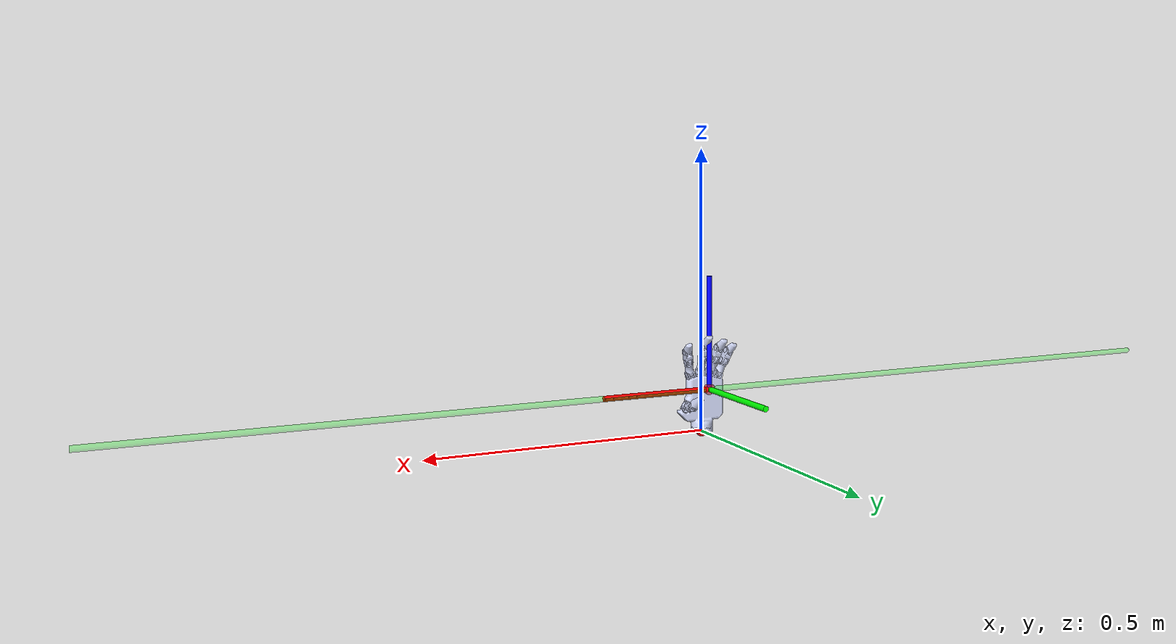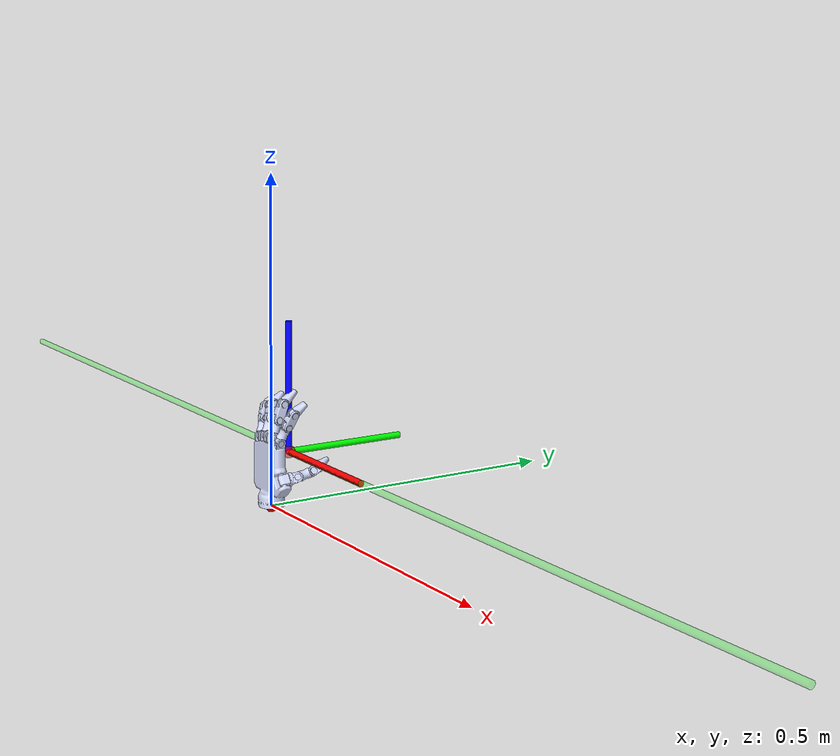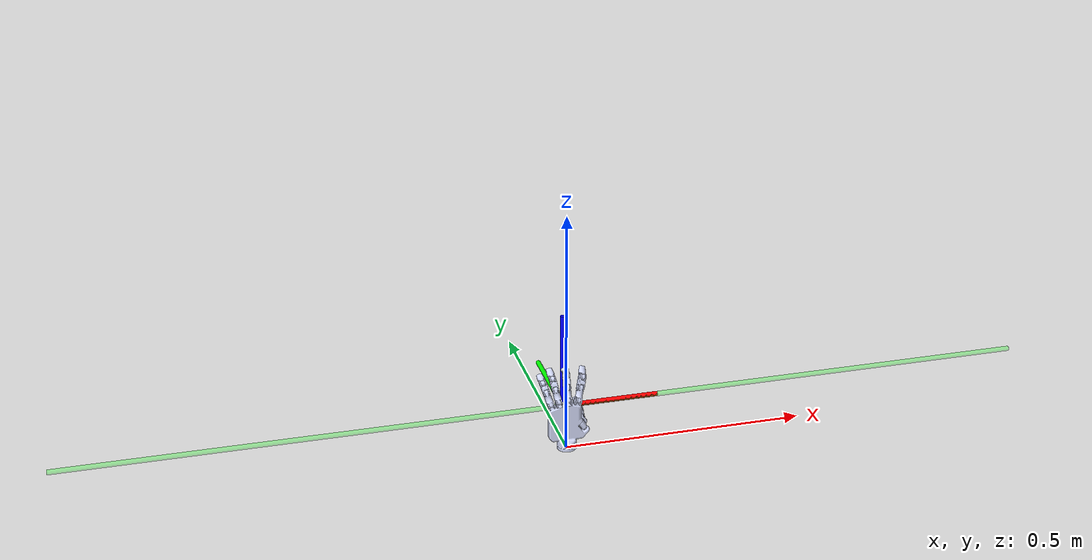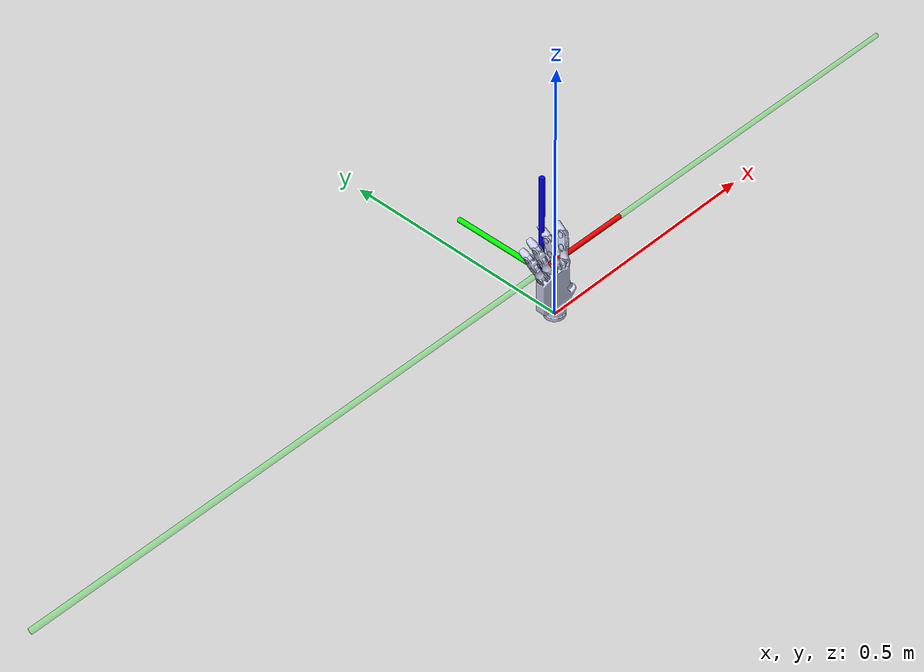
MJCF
<mujoco model="hand_left_sim">
    <compiler angle="radian"
              inertiafromgeom="true"
              texturedir="textures/"
              meshdir="/home/kavin/Documents/RosProjects/robot_ws/src/hand_left_sim/meshes/"/>

    <option impratio="20" cone="elliptic" density="1.2" viscosity="0.00002" timestep="0.002"/>

    <default>
        <geom density="5.0"/>
        <default class="joint">
            <joint axis="1 0 0" range="-3.14 3.14" damping="1" limited="true" armature="0.0002" frictionloss="0.01"/>
            <position kp="8" ctrlrange="-1.57 1.57"/>
        </default>
    </default>
    <size njmax="500" nconmax="100"/>
    <asset>
        <mesh name="palm_left" file="palm_left.STL"/>
        <mesh name="finger_11_left" file="finger_11_left.STL"/>
        <mesh name="finger_12_left" file="finger_12_left.STL"/>
        <mesh name="finger_13_left" file="finger_13_left.STL"/>
        <mesh name="finger_14_left" file="finger_14_left.STL"/>
        <mesh name="finger_21_left" file="finger_21_left.STL"/>
        <mesh name="finger_22_left" file="finger_22_left.STL"/>
        <mesh name="finger_23_left" file="finger_23_left.STL"/>
        <mesh name="finger_31_left" file="finger_31_left.STL"/>
        <mesh name="finger_32_left" file="finger_32_left.STL"/>
        <mesh name="finger_33_left" file="finger_33_left.STL"/>
        <mesh name="finger_41_left" file="finger_41_left.STL"/>
        <mesh name="finger_42_left" file="finger_42_left.STL"/>
        <mesh name="finger_43_left" file="finger_43_left.STL"/>
        <mesh name="finger_51_left" file="finger_51_left.STL"/>
        <mesh name="finger_52_left" file="finger_52_left.STL"/>
        <mesh name="finger_53_left" file="finger_53_left.STL"/>
    </asset>
    <worldbody>
        <body name="palm_left">
            <site name="ft_frame" pos="0 0 0" size="0.01 0.01 0.01" rgba="1 0 0 1" type="sphere" group="1"/>
            <body name="eef" pos="0 0.03 0.08">
                <site name="grip_site" pos="0 0 0" size="0.01 0.01 0.01" rgba="1 0 0 0.5" type="sphere" group="1"/>
                <site name="ee_x" pos="0.1 0 0" size="0.005 .1" quat="0.707105  0 0.707108 0 " rgba="1 0 0 1" type="cylinder" group="1"/>
                <site name="ee_y" pos="0 0.1 0" size="0.005 .1" quat="0.707105 0.707108 0 0" rgba="0 1 0 1" type="cylinder" group="1"/>
                <site name="ee_z" pos="0 0 0.1" size="0.005 .1" quat="1 0 0 0" rgba="0 0 1 1" type="cylinder" group="1"/>
                <site name="grip_site_cylinder" pos="0 0 0" size="0.005 1" quat="0.707105  0 0.707108 0 " rgba="0 1 0 0.3" type="cylinder" group="1"/>
            </body>

            <geom type="mesh" contype="0" conaffinity="0" group="1" rgba="0.792157 0.819608 0.933333 1" mesh="palm_left"/>
            <geom type="mesh" rgba="0.792157 0.819608 0.933333 1" mesh="palm_left"/>
            <body name="finger_11_left">
                <geom pos="0.033156 0 0.046854" quat="0.297559 -0.369215 -0.55247 -0.685504" type="mesh" contype="0" conaffinity="0" group="1" rgba="0.792157 0.819608 0.933333 1"
                      mesh="finger_11_left"/>
                <geom pos="0.033156 0 0.046854" quat="0.297559 -0.369215 -0.55247 -0.685504" type="mesh" rgba="0.792157 0.819608 0.933333 1" mesh="finger_11_left"/>
                <body name="finger_12_left">
                    <geom pos="0.0340431 0.00488584 0.0474386" quat="-0.225776 0.084373 -0.659108 -0.712378" type="mesh" contype="0" conaffinity="0" group="1" rgba="0.792157 0.819608 0.933333 1"
                          mesh="finger_12_left"/>
                    <geom pos="0.0340431 0.00488584 0.0474386" quat="-0.225776 0.084373 -0.659108 -0.712378" type="mesh" rgba="0.792157 0.819608 0.933333 1" mesh="finger_12_left"/>
                    <body name="finger_13_left" pos="0.0370088 0.0207994 0.0491807" quat="-0.219041 0.100573 -0.605544 -0.758435">
                        <inertial pos="-3.30478e-08 -2.57978e-07 0.0147548" quat="0.706872 4.59183e-06 -4.59488e-06 0.707342" mass="0.00477507" diaginertia="5.13037e-07 5.06539e-07 1.11818e-07"/>
                        <joint class="joint" name="j_13_left" axis="-1 0 0"/>
                        <geom type="mesh" contype="0" conaffinity="0" group="1" rgba="0.792157 0.819608 0.933333 1" mesh="finger_13_left"/>
                        <geom type="mesh" rgba="0.792157 0.819608 0.933333 1" mesh="finger_13_left"/>
                        <body name="finger_14_left" pos="0 0 0.028233" quat="0.984739 -0.174039 0 0">
                            <inertial pos="1.25847e-05 -0.000148502 0.0147394" quat="0.704711 0.00742855 -0.00610732 0.709429" mass="0.00459561" diaginertia="3.58607e-07 3.47268e-07 1.55217e-07"/>
                            <joint class="joint" name="j_14_left" axis="-1 0 0"/>
                            <geom type="mesh" contype="0" conaffinity="0" group="1" rgba="0.792157 0.819608 0.933333 1" mesh="finger_14_left"/>
                            <geom type="mesh" rgba="0.792157 0.819608 0.933333 1" mesh="finger_14_left"/>
                        </body>
                    </body>
                </body>
            </body>
            <body name="finger_21_left" pos="0.023151 -0.00042188 0.10268" quat="-0.0254504 0.144313 0.171776 0.974176">
                <inertial pos="-3.21564e-08 -2.51554e-07 0.0147548" quat="0.706869 4.57534e-06 -4.57842e-06 0.707345" mass="0.00477507" diaginertia="5.13037e-07 5.06539e-07 1.11818e-07"/>
                <joint class="joint" name="j_21_left"/>
                <geom type="mesh" contype="0" conaffinity="0" group="1" rgba="0.792157 0.819608 0.933333 1" mesh="finger_21_left"/>
                <geom type="mesh" rgba="0.792157 0.819608 0.933333 1" mesh="finger_21_left"/>
                <body name="finger_22_left" pos="0 0 0.028233">
                    <inertial pos="1.08863e-05 -0.00275456 0.0214744" quat="0.989928 0.141346 -0.000500597 0.00799259" mass="0.00590809" diaginertia="9.20449e-07 9.07304e-07 1.87606e-07"/>
                    <joint class="joint" name="j_22_left"/>
                    <geom type="mesh" contype="0" conaffinity="0" group="1" rgba="0.792157 0.819608 0.933333 1" mesh="finger_22_left"/>
                    <geom type="mesh" rgba="0.792157 0.819608 0.933333 1" mesh="finger_22_left"/>
                    <body name="finger_23_left">
                        <geom pos="0 0 0.021" quat="0.965926 0.25882 0 0" type="mesh" contype="0" conaffinity="0" group="1" rgba="0.792157 0.819608 0.933333 1" mesh="finger_23_left"/>
                        <geom pos="0 0 0.021" quat="0.965926 0.25882 0 0" type="mesh" rgba="0.792157 0.819608 0.933333 1" mesh="finger_23_left"/>
                    </body>
                </body>
            </body>
            <body name="finger_31_left" pos="0.003285 -0.00042186 0.10558" quat="-3.6174e-06 -6.37853e-07 0.17365 0.984807">
                <inertial pos="3.59589e-08 -2.44788e-07 0.0147121" quat="0.707337 -4.6115e-06 4.6085e-06 0.706876" mass="0.00477507" diaginertia="5.13037e-07 5.06539e-07 1.11818e-07"/>
                <joint class="joint" name="j_31_left"/>
                <geom type="mesh" contype="0" conaffinity="0" group="1" rgba="0.792157 0.819608 0.933333 1" mesh="finger_31_left"/>
                <geom type="mesh" rgba="0.792157 0.819608 0.933333 1" mesh="finger_31_left"/>
                <body name="finger_32_left" pos="0 0 0.028233">
                    <inertial pos="1.10371e-05 -0.00310821 0.0248837" quat="0.99031 0.138776 -0.000191912 0.00527068" mass="0.00724892" diaginertia="1.49898e-06 1.47412e-06 2.35806e-07"/>
                    <joint class="joint" name="j_32_left"/>
                    <geom type="mesh" contype="0" conaffinity="0" group="1" rgba="0.792157 0.819608 0.933333 1" mesh="finger_32_left"/>
                    <geom type="mesh" rgba="0.792157 0.819608 0.933333 1" mesh="finger_32_left"/>
                    <body name="finger_33_left" pos="0 0 0.025" quat="0.965926 0.25882 0 0">
                        <geom type="mesh" contype="0" conaffinity="0" group="1" rgba="0.792157 0.819608 0.933333 1" mesh="finger_33_left"/>
                        <geom type="mesh" rgba="0.792157 0.819608 0.933333 1" mesh="finger_33_left"/>
                    </body>
                </body>
            </body>
            <body name="finger_41_left" pos="-0.015852 -0.00042186 0.10376" quat="0.0169705 -0.0962642 0.172818 0.980091">
                <inertial pos="3.37177e-08 -2.44971e-07 0.0147121" quat="0.70734 -4.61409e-06 4.61104e-06 0.706874" mass="0.00477507" diaginertia="5.13037e-07 5.06539e-07 1.11818e-07"/>
                <joint class="joint" name="j_41_left"/>
                <geom type="mesh" contype="0" conaffinity="0" group="1" rgba="0.792157 0.819608 0.933333 1" mesh="finger_41_left"/>
                <geom type="mesh" rgba="0.792157 0.819608 0.933333 1" mesh="finger_41_left"/>
                <body name="finger_42_left" pos="0 0 0.028233">
                    <inertial pos="1.05983e-05 -0.00266741 0.0219148" quat="0.990645 0.136281 -0.000362587 0.00710666" mass="0.00610114" diaginertia="9.88638e-07 9.73608e-07 1.94842e-07"/>
                    <joint class="joint" name="j_42_left"/>
                    <geom type="mesh" contype="0" conaffinity="0" group="1" rgba="0.792157 0.819608 0.933333 1" mesh="finger_42_left"/>
                    <geom type="mesh" rgba="0.792157 0.819608 0.933333 1" mesh="finger_42_left"/>
                    <body name="finger_43_left">
                        <geom pos="0 0 0.022" quat="0.965926 0.25882 0 0" type="mesh" contype="0" conaffinity="0" group="1" rgba="0.792157 0.819608 0.933333 1" mesh="finger_43_left"/>
                        <geom pos="0 0 0.022" quat="0.965926 0.25882 0 0" type="mesh" rgba="0.792157 0.819608 0.933333 1" mesh="finger_43_left"/>
                    </body>
                </body>
            </body>
            <body name="finger_51_left" pos="-0.032224 -0.00042186 0.099812" quat="0.0245625 -0.13932 0.171903 0.974903">
                <inertial pos="3.37177e-08 -2.44971e-07 0.0147121" quat="0.70734 -4.61409e-06 4.61104e-06 0.706874" mass="0.00477507" diaginertia="5.13037e-07 5.06539e-07 1.11818e-07"/>
                <joint class="joint" name="j_51_left"/>
                <geom type="mesh" contype="0" conaffinity="0" group="1" rgba="0.792157 0.819608 0.933333 1" mesh="finger_51_left"/>
                <geom type="mesh" rgba="0.792157 0.819608 0.933333 1" mesh="finger_51_left"/>
                <body name="finger_52_left" pos="0 0 0.028233">
                    <inertial pos="1.0459e-05 -0.00230627 0.0197904" quat="0.991231 0.131857 -0.000451609 0.00858052" mass="0.00528889" diaginertia="7.09882e-07 7.00419e-07 1.67443e-07"/>
                    <joint class="joint" name="j_52_left"/>
                    <geom type="mesh" contype="0" conaffinity="0" group="1" rgba="0.792157 0.819608 0.933333 1" mesh="finger_52_left"/>
                    <geom type="mesh" rgba="0.792157 0.819608 0.933333 1" mesh="finger_52_left"/>
                    <body name="finger_53_left">
                        <geom pos="0 0 0.02" quat="0.965926 0.25882 0 0" type="mesh" contype="0" conaffinity="0" group="1" rgba="0.792157 0.819608 0.933333 1" mesh="finger_53_left"/>
                        <geom pos="0 0 0.02" quat="0.965926 0.25882 0 0" type="mesh" rgba="0.792157 0.819608 0.933333 1" mesh="finger_53_left"/>
                    </body>
                </body>
            </body>
        </body>
    </worldbody>

    <contact>
        <exclude body1="palm_left" body2="finger_11_left"/>
        <exclude body1="palm_left" body2="finger_12_left"/>
        <exclude body1="palm_left" body2="finger_21_left"/>
        <exclude body1="palm_left" body2="finger_31_left"/>
        <exclude body1="palm_left" body2="finger_41_left"/>
        <exclude body1="palm_left" body2="finger_51_left"/>
    </contact>

    <tendon>
        <fixed name="j_20_left">
            <joint joint="j_21_left" coef="1"/>
            <joint joint="j_22_left" coef="1"/>
        </fixed>
        <fixed name="j_30_left">
            <joint joint="j_31_left" coef="1"/>
            <joint joint="j_32_left" coef="1"/>
        </fixed>
        <fixed name="j_40_left">
            <joint joint="j_41_left" coef="1"/>
            <joint joint="j_42_left" coef="1"/>
        </fixed>
        <fixed name="j_50_left">
            <joint joint="j_51_left" coef="1"/>
            <joint joint="j_52_left" coef="1"/>
        </fixed>
    </tendon>

    <actuator>
        <position class="joint" name="j13_left_T" joint="j_13_left" ctrllimited="true" ctrlrange="0 2.14"/>
        <position class="joint" name="j14_left_T" joint="j_14_left" ctrllimited="true" ctrlrange="0 2.14"/>
        <position class="joint" name="j20_left_T" tendon="j_20_left" ctrllimited="true" ctrlrange="0 2.14" />
        <position class="joint" name="j30_left_T" tendon="j_30_left" ctrllimited="true" ctrlrange="0 2.14" />
        <position class="joint" name="j40_left_T" tendon="j_40_left" ctrllimited="true" ctrlrange="0 2.14" />
        <position class="joint" name="j50_left_T" tendon="j_50_left" ctrllimited="true" ctrlrange="0 2.14" />
    </actuator>
    <sensor>
        <force name="force_ee" site="ft_frame"/>
        <torque name="torque_ee" site="ft_frame"/>
    </sensor>
</mujoco>
